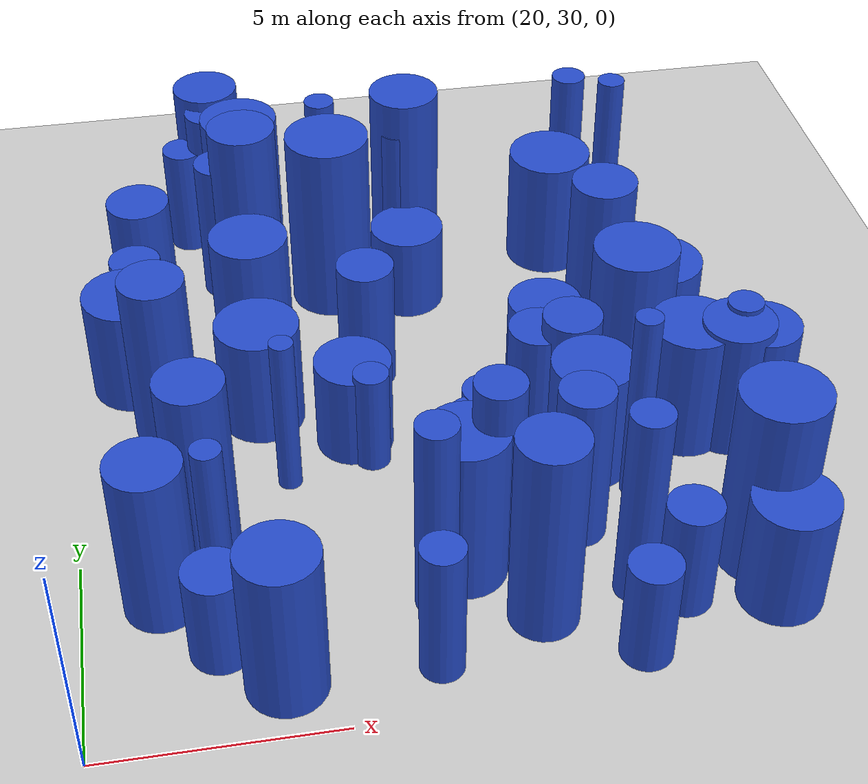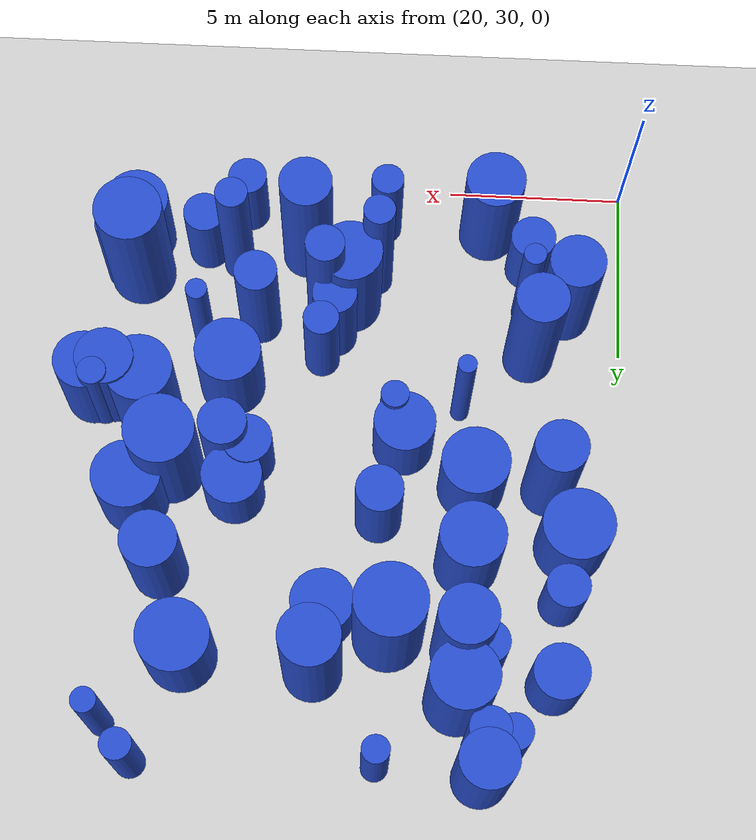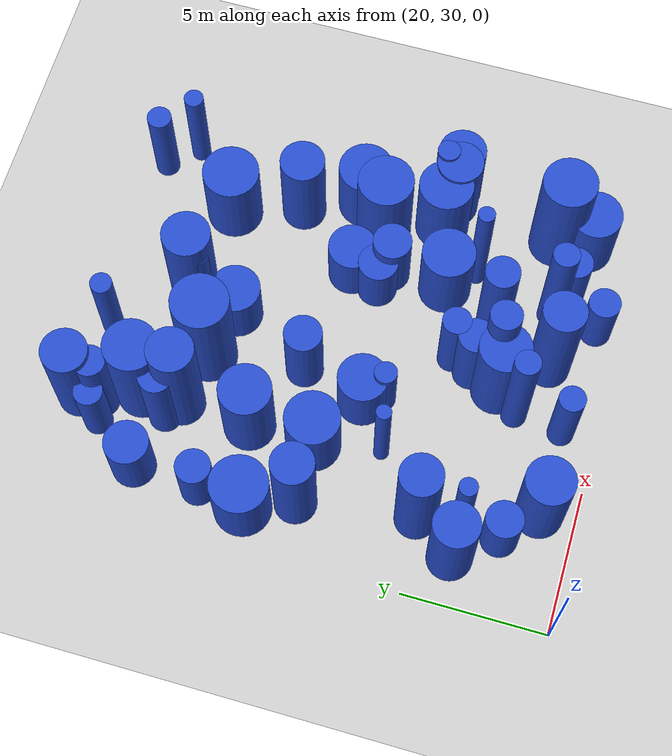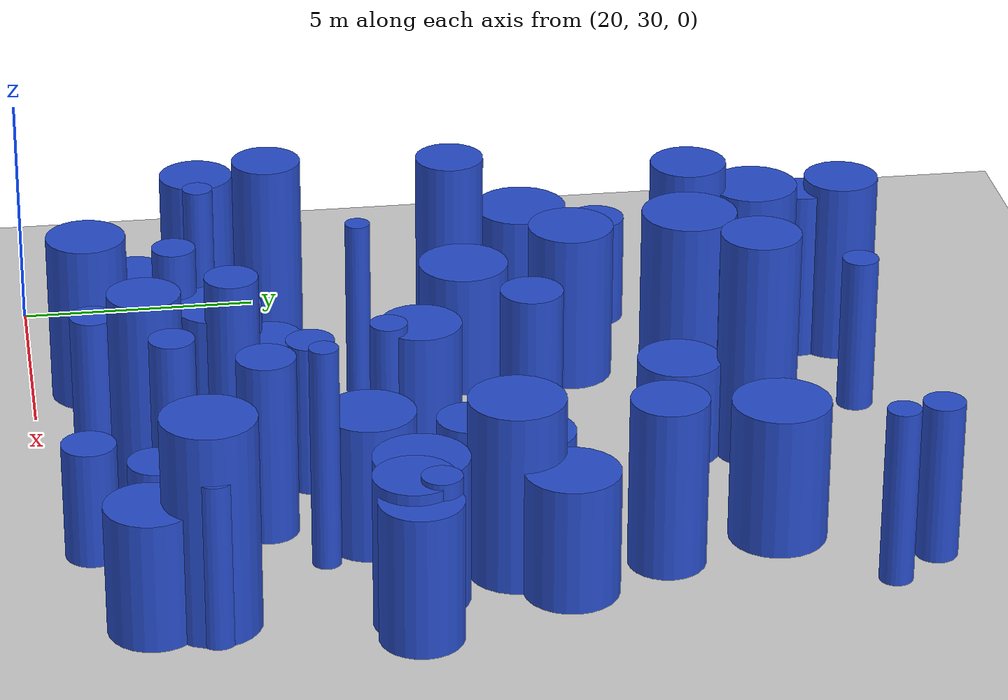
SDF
<sdf version="1.6">
 <world name="default">
  <model name="ground_plane">
   <static>1</static>
   <link name="link">
    <collision name="collision">
     <geometry><plane><normal>0 0 1</normal><size>100 100</size></plane></geometry>
     <surface><friction><ode><mu>100</mu><mu2>50</mu2></ode></friction></surface>
    </collision>
    <visual name="visual">
     <cast_shadows>0</cast_shadows>
     <geometry><plane><normal>0 0 1</normal><size>100 100</size></plane></geometry>
     <material>
      <script><uri>file://media/materials/scripts/gazebo.material</uri><name>Gazebo/Grey</name></script>
     </material>
    </visual>
   </link>
  </model>
  <model name="11">
   <static>0</static>
   <link name="link">
    <inertial>
     <mass>2</mass>
     <inertia><ixx>1.98008</ixx><ixy>0</ixy><ixz>0</ixz><iyy>1.98008</iyy><iyz>0</iyz><izz>0.982956</izz></inertia>
    </inertial>
    <collision name="collision">
     <geometry><cylinder><length>2.98858</length><radius>0.991441</radius></cylinder></geometry>
     <surface><contact><collide_without_contact>1</collide_without_contact></contact></surface>
    </collision>
    <visual name="visual">
     <geometry><cylinder><length>2.98858</length><radius>0.991441</radius></cylinder></geometry>
     <material>
      <script><uri>file://media/materials/scripts/gazebo.material</uri><name>Gazebo/Blue</name></script>
     </material>
    </visual>
    <gravity>0</gravity>
   </link>
   <pose>32.0029 44.3985 1.49429 0 -0 0</pose>
  </model>
  <model name="12">
   <static>0</static>
   <link name="link">
    <inertial>
     <mass>2</mass>
     <inertia><ixx>4.39104</ixx><ixy>0</ixy><ixz>0</ixz><iyy>4.39104</iyy><iyz>0</iyz><izz>0.677612</izz></inertia>
    </inertial>
    <collision name="collision">
     <geometry><cylinder><length>4.93086</length><radius>0.823172</radius></cylinder></geometry>
     <surface><contact><collide_without_contact>1</collide_without_contact></contact></surface>
    </collision>
    <visual name="visual">
     <geometry><cylinder><length>4.93086</length><radius>0.823172</radius></cylinder></geometry>
     <material>
      <script><uri>file://media/materials/scripts/gazebo.material</uri><name>Gazebo/Blue</name></script>
     </material>
    </visual>
    <gravity>0</gravity>
   </link>
   <pose>28.3847 44.6674 2.46543 0 -0 0</pose>
  </model>
  <model name="13">
   <static>0</static>
   <link name="link">
    <inertial>
     <mass>2</mass>
     <inertia><ixx>1.80797</ixx><ixy>0</ixy><ixz>0</ixz><iyy>1.80797</iyy><iyz>0</iyz><izz>0.69155</izz></inertia>
    </inertial>
    <collision name="collision">
     <geometry><cylinder><length>2.96195</length><radius>0.831595</radius></cylinder></geometry>
     <surface><contact><collide_without_contact>1</collide_without_contact></contact></surface>
    </collision>
    <visual name="visual">
     <geometry><cylinder><length>2.96195</length><radius>0.831595</radius></cylinder></geometry>
     <material>
      <script><uri>file://media/materials/scripts/gazebo.material</uri><name>Gazebo/Blue</name></script>
     </material>
    </visual>
    <gravity>0</gravity>
   </link>
   <pose>35.0335 36.8774 1.48097 0 -0 0</pose>
  </model>
  <model name="16">
   <static>0</static>
   <link name="link">
    <inertial>
     <mass>2</mass>
     <inertia><ixx>1.94796</ixx><ixy>0</ixy><ixz>0</ixz><iyy>1.94796</iyy><iyz>0</iyz><izz>0.38834</izz></inertia>
    </inertial>
    <collision name="collision">
     <geometry><cylinder><length>3.24388</length><radius>0.623169</radius></cylinder></geometry>
     <surface><contact><collide_without_contact>1</collide_without_contact></contact></surface>
    </collision>
    <visual name="visual">
     <geometry><cylinder><length>3.24388</length><radius>0.623169</radius></cylinder></geometry>
     <material>
      <script><uri>file://media/materials/scripts/gazebo.material</uri><name>Gazebo/Blue</name></script>
     </material>
    </visual>
    <gravity>0</gravity>
   </link>
   <pose>28.2373 34.7081 1.62194 0 -0 0</pose>
  </model>
  <model name="18">
   <static>0</static>
   <link name="link">
    <inertial>
     <mass>2</mass>
     <inertia><ixx>1.36588</ixx><ixy>0</ixy><ixz>0</ixz><iyy>1.36588</iyy><iyz>0</iyz><izz>0.264625</izz></inertia>
    </inertial>
    <collision name="collision">
     <geometry><cylinder><length>2.72056</length><radius>0.514417</radius></cylinder></geometry>
     <surface><contact><collide_without_contact>1</collide_without_contact></contact></surface>
    </collision>
    <visual name="visual">
     <geometry><cylinder><length>2.72056</length><radius>0.514417</radius></cylinder></geometry>
     <material>
      <script><uri>file://media/materials/scripts/gazebo.material</uri><name>Gazebo/Blue</name></script>
     </material>
    </visual>
    <gravity>0</gravity>
   </link>
   <pose>28.2068 44.8037 1.36028 0 -0 0</pose>
  </model>
  <model name="21">
   <static>0</static>
   <link name="link">
    <inertial>
     <mass>2</mass>
     <inertia><ixx>4.07181</ixx><ixy>0</ixy><ixz>0</ixz><iyy>4.07181</iyy><iyz>0</iyz><izz>0.543778</izz></inertia>
    </inertial>
    <collision name="collision">
     <geometry><cylinder><length>4.77488</length><radius>0.737413</radius></cylinder></geometry>
     <surface><contact><collide_without_contact>1</collide_without_contact></contact></surface>
    </collision>
    <visual name="visual">
     <geometry><cylinder><length>4.77488</length><radius>0.737413</radius></cylinder></geometry>
     <material>
      <script><uri>file://media/materials/scripts/gazebo.material</uri><name>Gazebo/Blue</name></script>
     </material>
    </visual>
    <gravity>0</gravity>
   </link>
   <pose>29.1484 32.1402 2.38744 0 -0 0</pose>
  </model>
  <model name="29">
   <static>0</static>
   <link name="link">
    <inertial>
     <mass>2</mass>
     <inertia><ixx>1.64089</ixx><ixy>0</ixy><ixz>0</ixz><iyy>1.64089</iyy><iyz>0</iyz><izz>0.902527</izz></inertia>
    </inertial>
    <collision name="collision">
     <geometry><cylinder><length>2.67166</length><radius>0.950014</radius></cylinder></geometry>
     <surface><contact><collide_without_contact>1</collide_without_contact></contact></surface>
    </collision>
    <visual name="visual">
     <geometry><cylinder><length>2.67166</length><radius>0.950014</radius></cylinder></geometry>
     <material>
      <script><uri>file://media/materials/scripts/gazebo.material</uri><name>Gazebo/Blue</name></script>
     </material>
    </visual>
    <gravity>0</gravity>
   </link>
   <pose>24.1929 39.1758 1.33583 0 -0 0</pose>
  </model>
  <model name="31">
   <static>0</static>
   <link name="link">
    <inertial>
     <mass>2</mass>
     <inertia><ixx>1.24573</ixx><ixy>0</ixy><ixz>0</ixz><iyy>1.24573</iyy><iyz>0</iyz><izz>0.741657</izz></inertia>
    </inertial>
    <collision name="collision">
     <geometry><cylinder><length>2.29115</length><radius>0.861195</radius></cylinder></geometry>
     <surface><contact><collide_without_contact>1</collide_without_contact></contact></surface>
    </collision>
    <visual name="visual">
     <geometry><cylinder><length>2.29115</length><radius>0.861195</radius></cylinder></geometry>
     <material>
      <script><uri>file://media/materials/scripts/gazebo.material</uri><name>Gazebo/Blue</name></script>
     </material>
    </visual>
    <gravity>0</gravity>
   </link>
   <pose>26.1555 38.0122 1.14558 0 -0 0</pose>
  </model>
  <model name="36">
   <static>0</static>
   <link name="link">
    <inertial>
     <mass>2</mass>
     <inertia><ixx>1.9741</ixx><ixy>0</ixy><ixz>0</ixz><iyy>1.9741</iyy><iyz>0</iyz><izz>0.180988</izz></inertia>
    </inertial>
    <collision name="collision">
     <geometry><cylinder><length>3.36179</length><radius>0.425426</radius></cylinder></geometry>
     <surface><contact><collide_without_contact>1</collide_without_contact></contact></surface>
    </collision>
    <visual name="visual">
     <geometry><cylinder><length>3.36179</length><radius>0.425426</radius></cylinder></geometry>
     <material>
      <script><uri>file://media/materials/scripts/gazebo.material</uri><name>Gazebo/Blue</name></script>
     </material>
    </visual>
    <gravity>0</gravity>
   </link>
   <pose>33.1796 47.3533 1.6809 0 -0 0</pose>
  </model>
  <model name="52">
   <static>0</static>
   <link name="link">
    <inertial>
     <mass>2</mass>
     <inertia><ixx>2.45511</ixx><ixy>0</ixy><ixz>0</ixz><iyy>2.45511</iyy><iyz>0</iyz><izz>0.610488</izz></inertia>
    </inertial>
    <collision name="collision">
     <geometry><cylinder><length>3.59154</length><radius>0.781337</radius></cylinder></geometry>
     <surface><contact><collide_without_contact>1</collide_without_contact></contact></surface>
    </collision>
    <visual name="visual">
     <geometry><cylinder><length>3.59154</length><radius>0.781337</radius></cylinder></geometry>
     <material>
      <script><uri>file://media/materials/scripts/gazebo.material</uri><name>Gazebo/Blue</name></script>
     </material>
    </visual>
    <gravity>0</gravity>
   </link>
   <pose>32.7626 42.022 1.79577 0 -0 0</pose>
  </model>
  <model name="53">
   <static>0</static>
   <link name="link">
    <inertial>
     <mass>2</mass>
     <inertia><ixx>1.89191</ixx><ixy>0</ixy><ixz>0</ixz><iyy>1.89191</iyy><iyz>0</iyz><izz>0.1601</izz></inertia>
    </inertial>
    <collision name="collision">
     <geometry><cylinder><length>3.29714</length><radius>0.400125</radius></cylinder></geometry>
     <surface><contact><collide_without_contact>1</collide_without_contact></contact></surface>
    </collision>
    <visual name="visual">
     <geometry><cylinder><length>3.29714</length><radius>0.400125</radius></cylinder></geometry>
     <material>
      <script><uri>file://media/materials/scripts/gazebo.material</uri><name>Gazebo/Blue</name></script>
     </material>
    </visual>
    <gravity>0</gravity>
   </link>
   <pose>34.7148 37.3115 1.64857 0 -0 0</pose>
  </model>
  <model name="58">
   <static>0</static>
   <link name="link">
    <inertial>
     <mass>2</mass>
     <inertia><ixx>2.80734</ixx><ixy>0</ixy><ixz>0</ixz><iyy>2.80734</iyy><iyz>0</iyz><izz>0.790535</izz></inertia>
    </inertial>
    <collision name="collision">
     <geometry><cylinder><length>3.80426</length><radius>0.889121</radius></cylinder></geometry>
     <surface><contact><collide_without_contact>1</collide_without_contact></contact></surface>
    </collision>
    <visual name="visual">
     <geometry><cylinder><length>3.80426</length><radius>0.889121</radius></cylinder></geometry>
     <material>
      <script><uri>file://media/materials/scripts/gazebo.material</uri><name>Gazebo/Blue</name></script>
     </material>
    </visual>
    <gravity>0</gravity>
   </link>
   <pose>27.8441 33.6819 1.90213 0 -0 0</pose>
  </model>
  <model name="59">
   <static>0</static>
   <link name="link">
    <inertial>
     <mass>2</mass>
     <inertia><ixx>1.12894</ixx><ixy>0</ixy><ixz>0</ixz><iyy>1.12894</iyy><iyz>0</iyz><izz>0.76588</izz></inertia>
    </inertial>
    <collision name="collision">
     <geometry><cylinder><length>2.11565</length><radius>0.875146</radius></cylinder></geometry>
     <surface><contact><collide_without_contact>1</collide_without_contact></contact></surface>
    </collision>
    <visual name="visual">
     <geometry><cylinder><length>2.11565</length><radius>0.875146</radius></cylinder></geometry>
     <material>
      <script><uri>file://media/materials/scripts/gazebo.material</uri><name>Gazebo/Blue</name></script>
     </material>
    </visual>
    <gravity>0</gravity>
   </link>
   <pose>28.177 43.0977 1.05782 0 -0 0</pose>
  </model>
  <model name="64">
   <static>0</static>
   <link name="link">
    <inertial>
     <mass>2</mass>
     <inertia><ixx>1.07162</ixx><ixy>0</ixy><ixz>0</ixz><iyy>1.07162</iyy><iyz>0</iyz><izz>0.712238</izz></inertia>
    </inertial>
    <collision name="collision">
     <geometry><cylinder><length>2.07196</length><radius>0.843942</radius></cylinder></geometry>
     <surface><contact><collide_without_contact>1</collide_without_contact></contact></surface>
    </collision>
    <visual name="visual">
     <geometry><cylinder><length>2.07196</length><radius>0.843942</radius></cylinder></geometry>
     <material>
      <script><uri>file://media/materials/scripts/gazebo.material</uri><name>Gazebo/Blue</name></script>
     </material>
    </visual>
    <gravity>0</gravity>
   </link>
   <pose>30.8302 39.6819 1.03598 0 -0 0</pose>
  </model>
  <model name="69">
   <static>0</static>
   <link name="link">
    <inertial>
     <mass>2</mass>
     <inertia><ixx>2.55552</ixx><ixy>0</ixy><ixz>0</ixz><iyy>2.55552</iyy><iyz>0</iyz><izz>0.698081</izz></inertia>
    </inertial>
    <collision name="collision">
     <geometry><cylinder><length>3.63853</length><radius>0.835512</radius></cylinder></geometry>
     <surface><contact><collide_without_contact>1</collide_without_contact></contact></surface>
    </collision>
    <visual name="visual">
     <geometry><cylinder><length>3.63853</length><radius>0.835512</radius></cylinder></geometry>
     <material>
      <script><uri>file://media/materials/scripts/gazebo.material</uri><name>Gazebo/Blue</name></script>
     </material>
    </visual>
    <gravity>0</gravity>
   </link>
   <pose>23.89 31.2537 1.81926 0 -0 0</pose>
  </model>
  <model name="78">
   <static>0</static>
   <link name="link">
    <inertial>
     <mass>2</mass>
     <inertia><ixx>3.89358</ixx><ixy>0</ixy><ixz>0</ixz><iyy>3.89358</iyy><iyz>0</iyz><izz>0.194985</izz></inertia>
    </inertial>
    <collision name="collision">
     <geometry><cylinder><length>4.77247</length><radius>0.441571</radius></cylinder></geometry>
     <surface><contact><collide_without_contact>1</collide_without_contact></contact></surface>
    </collision>
    <visual name="visual">
     <geometry><cylinder><length>4.77247</length><radius>0.441571</radius></cylinder></geometry>
     <material>
      <script><uri>file://media/materials/scripts/gazebo.material</uri><name>Gazebo/Blue</name></script>
     </material>
    </visual>
    <gravity>0</gravity>
   </link>
   <pose>27.1001 32.8841 2.38624 0 -0 0</pose>
  </model>
  <model name="91">
   <static>0</static>
   <link name="link">
    <inertial>
     <mass>2</mass>
     <inertia><ixx>1.88416</ixx><ixy>0</ixy><ixz>0</ixz><iyy>1.88416</iyy><iyz>0</iyz><izz>0.248682</izz></inertia>
    </inertial>
    <collision name="collision">
     <geometry><cylinder><length>3.24945</length><radius>0.498681</radius></cylinder></geometry>
     <surface><contact><collide_without_contact>1</collide_without_contact></contact></surface>
    </collision>
    <visual name="visual">
     <geometry><cylinder><length>3.24945</length><radius>0.498681</radius></cylinder></geometry>
     <material>
      <script><uri>file://media/materials/scripts/gazebo.material</uri><name>Gazebo/Blue</name></script>
     </material>
    </visual>
    <gravity>0</gravity>
   </link>
   <pose>28.5794 35.4647 1.62472 0 -0 0</pose>
  </model>
  <model name="94">
   <static>0</static>
   <link name="link">
    <inertial>
     <mass>2</mass>
     <inertia>
      <ixx>2.56569</ixx>
      <ixy>0</ixy>
      <ixz>0</ixz>
      <iyy>2.56569</iyy>
      <iyz>0</iyz>
      <izz>0.0685873</izz>
     </inertia>
    </inertial>
    <collision name="collision">
     <geometry><cylinder><length>3.89722</length><radius>0.261892</radius></cylinder></geometry>
     <surface><contact><collide_without_contact>1</collide_without_contact></contact></surface>
    </collision>
    <visual name="visual">
     <geometry><cylinder><length>3.89722</length><radius>0.261892</radius></cylinder></geometry>
     <material>
      <script><uri>file://media/materials/scripts/gazebo.material</uri><name>Gazebo/Blue</name></script>
     </material>
    </visual>
    <gravity>0</gravity>
   </link>
   <pose>24.5646 36.8898 1.94861 0 -0 0</pose>
  </model>
  <model name="103">
   <static>0</static>
   <link name="link">
    <inertial>
     <mass>2</mass>
     <inertia><ixx>3.8726</ixx><ixy>0</ixy><ixz>0</ixz><iyy>3.8726</iyy><iyz>0</iyz><izz>0.29541</izz></inertia>
    </inertial>
    <collision name="collision">
     <geometry><cylinder><length>4.72751</length><radius>0.543517</radius></cylinder></geometry>
     <surface><contact><collide_without_contact>1</collide_without_contact></contact></surface>
    </collision>
    <visual name="visual">
     <geometry><cylinder><length>4.72751</length><radius>0.543517</radius></cylinder></geometry>
     <material>
      <script><uri>file://media/materials/scripts/gazebo.material</uri><name>Gazebo/Blue</name></script>
     </material>
    </visual>
    <gravity>0</gravity>
   </link>
   <pose>28.5316 33.9189 2.36376 0 -0 0</pose>
  </model>
  <model name="109">
   <static>0</static>
   <link name="link">
    <inertial>
     <mass>2</mass>
     <inertia>
      <ixx>2.86598</ixx>
      <ixy>0</ixy>
      <ixz>0</ixz>
      <iyy>2.86598</iyy>
      <iyz>0</iyz>
      <izz>0.0994086</izz>
     </inertia>
    </inertial>
    <collision name="collision">
     <geometry><cylinder><length>4.11067</length><radius>0.315291</radius></cylinder></geometry>
     <surface><contact><collide_without_contact>1</collide_without_contact></contact></surface>
    </collision>
    <visual name="visual">
     <geometry><cylinder><length>4.11067</length><radius>0.315291</radius></cylinder></geometry>
     <material>
      <script><uri>file://media/materials/scripts/gazebo.material</uri><name>Gazebo/Blue</name></script>
     </material>
    </visual>
    <gravity>0</gravity>
   </link>
   <pose>22.8186 33.6914 2.05534 0 -0 0</pose>
  </model>
  <model name="138">
   <static>0</static>
   <link name="link">
    <inertial>
     <mass>2</mass>
     <inertia><ixx>2.86616</ixx><ixy>0</ixy><ixz>0</ixz><iyy>2.86616</iyy><iyz>0</iyz><izz>0.94196</izz></inertia>
    </inertial>
    <collision name="collision">
     <geometry><cylinder><length>3.79092</length><radius>0.970546</radius></cylinder></geometry>
     <surface><contact><collide_without_contact>1</collide_without_contact></contact></surface>
    </collision>
    <visual name="visual">
     <geometry><cylinder><length>3.79092</length><radius>0.970546</radius></cylinder></geometry>
     <material>
      <script><uri>file://media/materials/scripts/gazebo.material</uri><name>Gazebo/Blue</name></script>
     </material>
    </visual>
    <gravity>0</gravity>
   </link>
   <pose>32.707 39.0409 1.89546 0 -0 0</pose>
  </model>
  <model name="154">
   <static>0</static>
   <link name="link">
    <inertial>
     <mass>2</mass>
     <inertia><ixx>1.969</ixx><ixy>0</ixy><ixz>0</ixz><iyy>1.969</iyy><iyz>0</iyz><izz>0.143635</izz></inertia>
    </inertial>
    <collision name="collision">
     <geometry><cylinder><length>3.37388</length><radius>0.378992</radius></cylinder></geometry>
     <surface><contact><collide_without_contact>1</collide_without_contact></contact></surface>
    </collision>
    <visual name="visual">
     <geometry><cylinder><length>3.37388</length><radius>0.378992</radius></cylinder></geometry>
     <material>
      <script><uri>file://media/materials/scripts/gazebo.material</uri><name>Gazebo/Blue</name></script>
     </material>
    </visual>
    <gravity>0</gravity>
   </link>
   <pose>26.5902 47.1904 1.68694 0 -0 0</pose>
  </model>
  <model name="162">
   <static>0</static>
   <link name="link">
    <inertial>
     <mass>2</mass>
     <inertia><ixx>1.81525</ixx><ixy>0</ixy><ixz>0</ixz><iyy>1.81525</iyy><iyz>0</iyz><izz>0.856891</izz></inertia>
    </inertial>
    <collision name="collision">
     <geometry><cylinder><length>2.88458</length><radius>0.925684</radius></cylinder></geometry>
     <surface><contact><collide_without_contact>1</collide_without_contact></contact></surface>
    </collision>
    <visual name="visual">
     <geometry><cylinder><length>2.88458</length><radius>0.925684</radius></cylinder></geometry>
     <material>
      <script><uri>file://media/materials/scripts/gazebo.material</uri><name>Gazebo/Blue</name></script>
     </material>
    </visual>
    <gravity>0</gravity>
   </link>
   <pose>31.1056 36.3687 1.44229 0 -0 0</pose>
  </model>
  <model name="187">
   <static>0</static>
   <link name="link">
    <inertial>
     <mass>2</mass>
     <inertia><ixx>2.02524</ixx><ixy>0</ixy><ixz>0</ixz><iyy>2.02524</iyy><iyz>0</iyz><izz>0.662863</izz></inertia>
    </inertial>
    <collision name="collision">
     <geometry><cylinder><length>3.18793</length><radius>0.814164</radius></cylinder></geometry>
     <surface><contact><collide_without_contact>1</collide_without_contact></contact></surface>
    </collision>
    <visual name="visual">
     <geometry><cylinder><length>3.18793</length><radius>0.814164</radius></cylinder></geometry>
     <material>
      <script><uri>file://media/materials/scripts/gazebo.material</uri><name>Gazebo/Blue</name></script>
     </material>
    </visual>
    <gravity>0</gravity>
   </link>
   <pose>34.4383 36.8271 1.59396 0 -0 0</pose>
  </model>
  <model name="192">
   <static>0</static>
   <link name="link">
    <inertial>
     <mass>2</mass>
     <inertia><ixx>2.07774</ixx><ixy>0</ixy><ixz>0</ixz><iyy>2.07774</iyy><iyz>0</iyz><izz>0.131573</izz></inertia>
    </inertial>
    <collision name="collision">
     <geometry><cylinder><length>3.47444</length><radius>0.36273</radius></cylinder></geometry>
     <surface><contact><collide_without_contact>1</collide_without_contact></contact></surface>
    </collision>
    <visual name="visual">
     <geometry><cylinder><length>3.47444</length><radius>0.36273</radius></cylinder></geometry>
     <material>
      <script><uri>file://media/materials/scripts/gazebo.material</uri><name>Gazebo/Blue</name></script>
     </material>
    </visual>
    <gravity>0</gravity>
   </link>
   <pose>34.6264 33.0363 1.73722 0 -0 0</pose>
  </model>
  <model name="204">
   <static>0</static>
   <link name="link">
    <inertial>
     <mass>2</mass>
     <inertia><ixx>2.81573</ixx><ixy>0</ixy><ixz>0</ixz><iyy>2.81573</iyy><iyz>0</iyz><izz>0.606996</izz></inertia>
    </inertial>
    <collision name="collision">
     <geometry><cylinder><length>3.88244</length><radius>0.7791</radius></cylinder></geometry>
     <surface><contact><collide_without_contact>1</collide_without_contact></contact></surface>
    </collision>
    <visual name="visual">
     <geometry><cylinder><length>3.88244</length><radius>0.7791</radius></cylinder></geometry>
     <material>
      <script><uri>file://media/materials/scripts/gazebo.material</uri><name>Gazebo/Blue</name></script>
     </material>
    </visual>
    <gravity>0</gravity>
   </link>
   <pose>21.6187 33.7462 1.94122 0 -0 0</pose>
  </model>
  <model name="206">
   <static>0</static>
   <link name="link">
    <inertial>
     <mass>2</mass>
     <inertia><ixx>2.36079</ixx><ixy>0</ixy><ixz>0</ixz><iyy>2.36079</iyy><iyz>0</iyz><izz>0.11536</izz></inertia>
    </inertial>
    <collision name="collision">
     <geometry><cylinder><length>3.71735</length><radius>0.339647</radius></cylinder></geometry>
     <surface><contact><collide_without_contact>1</collide_without_contact></contact></surface>
    </collision>
    <visual name="visual">
     <geometry><cylinder><length>3.71735</length><radius>0.339647</radius></cylinder></geometry>
     <material>
      <script><uri>file://media/materials/scripts/gazebo.material</uri><name>Gazebo/Blue</name></script>
     </material>
    </visual>
    <gravity>0</gravity>
   </link>
   <pose>34.0409 46.3387 1.85867 0 -0 0</pose>
  </model>
  <model name="213">
   <static>0</static>
   <link name="link">
    <inertial>
     <mass>2</mass>
     <inertia><ixx>1.00609</ixx><ixy>0</ixy><ixz>0</ixz><iyy>1.00609</iyy><iyz>0</iyz><izz>0.486939</izz></inertia>
    </inertial>
    <collision name="collision">
     <geometry><cylinder><length>2.13909</length><radius>0.69781</radius></cylinder></geometry>
     <surface><contact><collide_without_contact>1</collide_without_contact></contact></surface>
    </collision>
    <visual name="visual">
     <geometry><cylinder><length>2.13909</length><radius>0.69781</radius></cylinder></geometry>
     <material>
      <script><uri>file://media/materials/scripts/gazebo.material</uri><name>Gazebo/Blue</name></script>
     </material>
    </visual>
    <gravity>0</gravity>
   </link>
   <pose>30.4654 38.6609 1.06955 0 -0 0</pose>
  </model>
  <model name="222">
   <static>0</static>
   <link name="link">
    <inertial>
     <mass>2</mass>
     <inertia><ixx>3.75545</ixx><ixy>0</ixy><ixz>0</ixz><iyy>3.75545</iyy><iyz>0</iyz><izz>0.888662</izz></inertia>
    </inertial>
    <collision name="collision">
     <geometry><cylinder><length>4.45721</length><radius>0.942689</radius></cylinder></geometry>
     <surface><contact><collide_without_contact>1</collide_without_contact></contact></surface>
    </collision>
    <visual name="visual">
     <geometry><cylinder><length>4.45721</length><radius>0.942689</radius></cylinder></geometry>
     <material>
      <script><uri>file://media/materials/scripts/gazebo.material</uri><name>Gazebo/Blue</name></script>
     </material>
    </visual>
    <gravity>0</gravity>
   </link>
   <pose>33.9636 33.0053 2.2286 0 -0 0</pose>
  </model>
  <model name="224">
   <static>0</static>
   <link name="link">
    <inertial>
     <mass>2</mass>
     <inertia><ixx>1.28076</ixx><ixy>0</ixy><ixz>0</ixz><iyy>1.28076</iyy><iyz>0</iyz><izz>0.578154</izz></inertia>
    </inertial>
    <collision name="collision">
     <geometry><cylinder><length>2.43929</length><radius>0.760364</radius></cylinder></geometry>
     <surface><contact><collide_without_contact>1</collide_without_contact></contact></surface>
    </collision>
    <visual name="visual">
     <geometry><cylinder><length>2.43929</length><radius>0.760364</radius></cylinder></geometry>
     <material>
      <script><uri>file://media/materials/scripts/gazebo.material</uri><name>Gazebo/Blue</name></script>
     </material>
    </visual>
    <gravity>0</gravity>
   </link>
   <pose>21.7975 44.7899 1.21964 0 -0 0</pose>
  </model>
  <model name="229">
   <static>0</static>
   <link name="link">
    <inertial>
     <mass>2</mass>
     <inertia><ixx>2.92622</ixx><ixy>0</ixy><ixz>0</ixz><iyy>2.92622</iyy><iyz>0</iyz><izz>0.6225</izz></inertia>
    </inertial>
    <collision name="collision">
     <geometry><cylinder><length>3.96104</length><radius>0.788987</radius></cylinder></geometry>
     <surface><contact><collide_without_contact>1</collide_without_contact></contact></surface>
    </collision>
    <visual name="visual">
     <geometry><cylinder><length>3.96104</length><radius>0.788987</radius></cylinder></geometry>
     <material>
      <script><uri>file://media/materials/scripts/gazebo.material</uri><name>Gazebo/Blue</name></script>
     </material>
    </visual>
    <gravity>0</gravity>
   </link>
   <pose>23.7464 47.3746 1.98052 0 -0 0</pose>
  </model>
  <model name="232">
   <static>0</static>
   <link name="link">
    <inertial>
     <mass>2</mass>
     <inertia><ixx>2.0346</ixx><ixy>0</ixy><ixz>0</ixz><iyy>2.0346</iyy><iyz>0</iyz><izz>0.910581</izz></inertia>
    </inertial>
    <collision name="collision">
     <geometry><cylinder><length>3.07829</length><radius>0.954244</radius></cylinder></geometry>
     <surface><contact><collide_without_contact>1</collide_without_contact></contact></surface>
    </collision>
    <visual name="visual">
     <geometry><cylinder><length>3.07829</length><radius>0.954244</radius></cylinder></geometry>
     <material>
      <script><uri>file://media/materials/scripts/gazebo.material</uri><name>Gazebo/Blue</name></script>
     </material>
    </visual>
    <gravity>0</gravity>
   </link>
   <pose>33.4994 37.0755 1.53915 0 -0 0</pose>
  </model>
  <model name="264">
   <static>0</static>
   <link name="link">
    <inertial>
     <mass>2</mass>
     <inertia><ixx>1.6187</ixx><ixy>0</ixy><ixz>0</ixz><iyy>1.6187</iyy><iyz>0</iyz><izz>0.809541</izz></inertia>
    </inertial>
    <collision name="collision">
     <geometry><cylinder><length>2.69881</length><radius>0.899745</radius></cylinder></geometry>
     <surface><contact><collide_without_contact>1</collide_without_contact></contact></surface>
    </collision>
    <visual name="visual">
     <geometry><cylinder><length>2.69881</length><radius>0.899745</radius></cylinder></geometry>
     <material>
      <script><uri>file://media/materials/scripts/gazebo.material</uri><name>Gazebo/Blue</name></script>
     </material>
    </visual>
    <gravity>0</gravity>
   </link>
   <pose>34.006 31.8527 1.3494 0 -0 0</pose>
  </model>
  <model name="265">
   <static>0</static>
   <link name="link">
    <inertial>
     <mass>2</mass>
     <inertia><ixx>3.38498</ixx><ixy>0</ixy><ixz>0</ixz><iyy>3.38498</iyy><iyz>0</iyz><izz>0.852999</izz></inertia>
    </inertial>
    <collision name="collision">
     <geometry><cylinder><length>4.21318</length><radius>0.92358</radius></cylinder></geometry>
     <surface><contact><collide_without_contact>1</collide_without_contact></contact></surface>
    </collision>
    <visual name="visual">
     <geometry><cylinder><length>4.21318</length><radius>0.92358</radius></cylinder></geometry>
     <material>
      <script><uri>file://media/materials/scripts/gazebo.material</uri><name>Gazebo/Blue</name></script>
     </material>
    </visual>
    <gravity>0</gravity>
   </link>
   <pose>24.4255 45.3263 2.10659 0 -0 0</pose>
  </model>
  <model name="267">
   <static>0</static>
   <link name="link">
    <inertial>
     <mass>2</mass>
     <inertia><ixx>1.28697</ixx><ixy>0</ixy><ixz>0</ixz><iyy>1.28697</iyy><iyz>0</iyz><izz>0.342828</izz></inertia>
    </inertial>
    <collision name="collision">
     <geometry><cylinder><length>2.58715</length><radius>0.585515</radius></cylinder></geometry>
     <surface><contact><collide_without_contact>1</collide_without_contact></contact></surface>
    </collision>
    <visual name="visual">
     <geometry><cylinder><length>2.58715</length><radius>0.585515</radius></cylinder></geometry>
     <material>
      <script><uri>file://media/materials/scripts/gazebo.material</uri><name>Gazebo/Blue</name></script>
     </material>
    </visual>
    <gravity>0</gravity>
   </link>
   <pose>32.0766 32.1246 1.29357 0 -0 0</pose>
  </model>
  <model name="270">
   <static>0</static>
   <link name="link">
    <inertial>
     <mass>2</mass>
     <inertia><ixx>1.15854</ixx><ixy>0</ixy><ixz>0</ixz><iyy>1.15854</iyy><iyz>0</iyz><izz>0.301348</izz></inertia>
    </inertial>
    <collision name="collision">
     <geometry><cylinder><length>2.4591</length><radius>0.548952</radius></cylinder></geometry>
     <surface><contact><collide_without_contact>1</collide_without_contact></contact></surface>
    </collision>
    <visual name="visual">
     <geometry><cylinder><length>2.4591</length><radius>0.548952</radius></cylinder></geometry>
     <material>
      <script><uri>file://media/materials/scripts/gazebo.material</uri><name>Gazebo/Blue</name></script>
     </material>
    </visual>
    <gravity>0</gravity>
   </link>
   <pose>30.9279 30.8693 1.22955 0 -0 0</pose>
  </model>
  <model name="288">
   <static>0</static>
   <link name="link">
    <inertial>
     <mass>2</mass>
     <inertia><ixx>3.95964</ixx><ixy>0</ixy><ixz>0</ixz><iyy>3.95964</iyy><iyz>0</iyz><izz>0.973963</izz></inertia>
    </inertial>
    <collision name="collision">
     <geometry><cylinder><length>4.56464</length><radius>0.986896</radius></cylinder></geometry>
     <surface><contact><collide_without_contact>1</collide_without_contact></contact></surface>
    </collision>
    <visual name="visual">
     <geometry><cylinder><length>4.56464</length><radius>0.986896</radius></cylinder></geometry>
     <material>
      <script><uri>file://media/materials/scripts/gazebo.material</uri><name>Gazebo/Blue</name></script>
     </material>
    </visual>
    <gravity>0</gravity>
   </link>
   <pose>26.3721 43.5804 2.28232 0 -0 0</pose>
  </model>
  <model name="291">
   <static>0</static>
   <link name="link">
    <inertial>
     <mass>2</mass>
     <inertia><ixx>1.36407</ixx><ixy>0</ixy><ixz>0</ixz><iyy>1.36407</iyy><iyz>0</iyz><izz>0.458772</izz></inertia>
    </inertial>
    <collision name="collision">
     <geometry><cylinder><length>2.60923</length><radius>0.677327</radius></cylinder></geometry>
     <surface><contact><collide_without_contact>1</collide_without_contact></contact></surface>
    </collision>
    <visual name="visual">
     <geometry><cylinder><length>2.60923</length><radius>0.677327</radius></cylinder></geometry>
     <material>
      <script><uri>file://media/materials/scripts/gazebo.material</uri><name>Gazebo/Blue</name></script>
     </material>
    </visual>
    <gravity>0</gravity>
   </link>
   <pose>31.1421 38.3559 1.30462 0 -0 0</pose>
  </model>
  <model name="307">
   <static>0</static>
   <link name="link">
    <inertial>
     <mass>2</mass>
     <inertia><ixx>1.09874</ixx><ixy>0</ixy><ixz>0</ixz><iyy>1.09874</iyy><iyz>0</iyz><izz>0.155872</izz></inertia>
    </inertial>
    <collision name="collision">
     <geometry><cylinder><length>2.47484</length><radius>0.394807</radius></cylinder></geometry>
     <surface><contact><collide_without_contact>1</collide_without_contact></contact></surface>
    </collision>
    <visual name="visual">
     <geometry><cylinder><length>2.47484</length><radius>0.394807</radius></cylinder></geometry>
     <material>
      <script><uri>file://media/materials/scripts/gazebo.material</uri><name>Gazebo/Blue</name></script>
     </material>
    </visual>
    <gravity>0</gravity>
   </link>
   <pose>26.4559 37.3053 1.23742 0 -0 0</pose>
  </model>
  <model name="336">
   <static>0</static>
   <link name="link">
    <inertial>
     <mass>2</mass>
     <inertia><ixx>2.44665</ixx><ixy>0</ixy><ixz>0</ixz><iyy>2.44665</iyy><iyz>0</iyz><izz>0.308872</izz></inertia>
    </inertial>
    <collision name="collision">
     <geometry><cylinder><length>3.70854</length><radius>0.555763</radius></cylinder></geometry>
     <surface><contact><collide_without_contact>1</collide_without_contact></contact></surface>
    </collision>
    <visual name="visual">
     <geometry><cylinder><length>3.70854</length><radius>0.555763</radius></cylinder></geometry>
     <material>
      <script><uri>file://media/materials/scripts/gazebo.material</uri><name>Gazebo/Blue</name></script>
     </material>
    </visual>
    <gravity>0</gravity>
   </link>
   <pose>23.7224 46.5555 1.85427 0 -0 0</pose>
  </model>
  <model name="353">
   <static>0</static>
   <link name="link">
    <inertial>
     <mass>2</mass>
     <inertia><ixx>2.87809</ixx><ixy>0</ixy><ixz>0</ixz><iyy>2.87809</iyy><iyz>0</iyz><izz>0.246808</izz></inertia>
    </inertial>
    <collision name="collision">
     <geometry><cylinder><length>4.06548</length><radius>0.496798</radius></cylinder></geometry>
     <surface><contact><collide_without_contact>1</collide_without_contact></contact></surface>
    </collision>
    <visual name="visual">
     <geometry><cylinder><length>4.06548</length><radius>0.496798</radius></cylinder></geometry>
     <material>
      <script><uri>file://media/materials/scripts/gazebo.material</uri><name>Gazebo/Blue</name></script>
     </material>
    </visual>
    <gravity>0</gravity>
   </link>
   <pose>28.1957 44.3701 2.03274 0 -0 0</pose>
  </model>
  <model name="396">
   <static>0</static>
   <link name="link">
    <inertial>
     <mass>2</mass>
     <inertia><ixx>2.35602</ixx><ixy>0</ixy><ixz>0</ixz><iyy>2.35602</iyy><iyz>0</iyz><izz>0.327516</izz></inertia>
    </inertial>
    <collision name="collision">
     <geometry><cylinder><length>3.62679</length><radius>0.57229</radius></cylinder></geometry>
     <surface><contact><collide_without_contact>1</collide_without_contact></contact></surface>
    </collision>
    <visual name="visual">
     <geometry><cylinder><length>3.62679</length><radius>0.57229</radius></cylinder></geometry>
     <material>
      <script><uri>file://media/materials/scripts/gazebo.material</uri><name>Gazebo/Blue</name></script>
     </material>
    </visual>
    <gravity>0</gravity>
   </link>
   <pose>23.8097 44.3337 1.81339 0 -0 0</pose>
  </model>
  <model name="407">
   <static>0</static>
   <link name="link">
    <inertial>
     <mass>2</mass>
     <inertia><ixx>1.39668</ixx><ixy>0</ixy><ixz>0</ixz><iyy>1.39668</iyy><iyz>0</iyz><izz>0.245168</izz></inertia>
    </inertial>
    <collision name="collision">
     <geometry><cylinder><length>2.76489</length><radius>0.495144</radius></cylinder></geometry>
     <surface><contact><collide_without_contact>1</collide_without_contact></contact></surface>
    </collision>
    <visual name="visual">
     <geometry><cylinder><length>2.76489</length><radius>0.495144</radius></cylinder></geometry>
     <material>
      <script><uri>file://media/materials/scripts/gazebo.material</uri><name>Gazebo/Blue</name></script>
     </material>
    </visual>
    <gravity>0</gravity>
   </link>
   <pose>23.0215 46.4791 1.38244 0 -0 0</pose>
  </model>
  <model name="417">
   <static>0</static>
   <link name="link">
    <inertial>
     <mass>2</mass>
     <inertia>
      <ixx>3.75007</ixx>
      <ixy>0</ixy>
      <ixz>0</ixz>
      <iyy>3.75007</iyy>
      <iyz>0</iyz>
      <izz>0.0861773</izz>
     </inertia>
    </inertial>
    <collision name="collision">
     <geometry><cylinder><length>4.71613</length><radius>0.29356</radius></cylinder></geometry>
     <surface><contact><collide_without_contact>1</collide_without_contact></contact></surface>
    </collision>
    <visual name="visual">
     <geometry><cylinder><length>4.71613</length><radius>0.29356</radius></cylinder></geometry>
     <material>
      <script><uri>file://media/materials/scripts/gazebo.material</uri><name>Gazebo/Blue</name></script>
     </material>
    </visual>
    <gravity>0</gravity>
   </link>
   <pose>31.8912 35.4024 2.35807 0 -0 0</pose>
  </model>
  <model name="425">
   <static>0</static>
   <link name="link">
    <inertial>
     <mass>2</mass>
     <inertia><ixx>3.15536</ixx><ixy>0</ixy><ixz>0</ixz><iyy>3.15536</iyy><iyz>0</iyz><izz>0.534839</izz></inertia>
    </inertial>
    <collision name="collision">
     <geometry><cylinder><length>4.16265</length><radius>0.731327</radius></cylinder></geometry>
     <surface><contact><collide_without_contact>1</collide_without_contact></contact></surface>
    </collision>
    <visual name="visual">
     <geometry><cylinder><length>4.16265</length><radius>0.731327</radius></cylinder></geometry>
     <material>
      <script><uri>file://media/materials/scripts/gazebo.material</uri><name>Gazebo/Blue</name></script>
     </material>
    </visual>
    <gravity>0</gravity>
   </link>
   <pose>22.0405 39.1688 2.08133 0 -0 0</pose>
  </model>
  <model name="454">
   <static>0</static>
   <link name="link">
    <inertial>
     <mass>2</mass>
     <inertia><ixx>3.84396</ixx><ixy>0</ixy><ixz>0</ixz><iyy>3.84396</iyy><iyz>0</iyz><izz>0.204511</izz></inertia>
    </inertial>
    <collision name="collision">
     <geometry><cylinder><length>4.73817</length><radius>0.452229</radius></cylinder></geometry>
     <surface><contact><collide_without_contact>1</collide_without_contact></contact></surface>
    </collision>
    <visual name="visual">
     <geometry><cylinder><length>4.73817</length><radius>0.452229</radius></cylinder></geometry>
     <material>
      <script><uri>file://media/materials/scripts/gazebo.material</uri><name>Gazebo/Blue</name></script>
     </material>
    </visual>
    <gravity>0</gravity>
   </link>
   <pose>31.1494 32.5424 2.36908 0 -0 0</pose>
  </model>
  <model name="456">
   <static>0</static>
   <link name="link">
    <inertial>
     <mass>2</mass>
     <inertia><ixx>2.65181</ixx><ixy>0</ixy><ixz>0</ixz><iyy>2.65181</iyy><iyz>0</iyz><izz>0.356726</izz></inertia>
    </inertial>
    <collision name="collision">
     <geometry><cylinder><length>3.85236</length><radius>0.597265</radius></cylinder></geometry>
     <surface><contact><collide_without_contact>1</collide_without_contact></contact></surface>
    </collision>
    <visual name="visual">
     <geometry><cylinder><length>3.85236</length><radius>0.597265</radius></cylinder></geometry>
     <material>
      <script><uri>file://media/materials/scripts/gazebo.material</uri><name>Gazebo/Blue</name></script>
     </material>
    </visual>
    <gravity>0</gravity>
   </link>
   <pose>30.4172 34.414 1.92618 0 -0 0</pose>
  </model>
  <model name="459">
   <static>0</static>
   <link name="link">
    <inertial>
     <mass>2</mass>
     <inertia><ixx>2.36295</ixx><ixy>0</ixy><ixz>0</ixz><iyy>2.36295</iyy><iyz>0</iyz><izz>0.814948</izz></inertia>
    </inertial>
    <collision name="collision">
     <geometry><cylinder><length>3.42532</length><radius>0.902745</radius></cylinder></geometry>
     <surface><contact><collide_without_contact>1</collide_without_contact></contact></surface>
    </collision>
    <visual name="visual">
     <geometry><cylinder><length>3.42532</length><radius>0.902745</radius></cylinder></geometry>
     <material>
      <script><uri>file://media/materials/scripts/gazebo.material</uri><name>Gazebo/Blue</name></script>
     </material>
    </visual>
    <gravity>0</gravity>
   </link>
   <pose>24.2643 41.4564 1.71266 0 -0 0</pose>
  </model>
  <model name="462">
   <static>0</static>
   <link name="link">
    <inertial>
     <mass>2</mass>
     <inertia><ixx>3.76634</ixx><ixy>0</ixy><ixz>0</ixz><iyy>3.76634</iyy><iyz>0</iyz><izz>0.52827</izz></inertia>
    </inertial>
    <collision name="collision">
     <geometry><cylinder><length>4.58402</length><radius>0.726822</radius></cylinder></geometry>
     <surface><contact><collide_without_contact>1</collide_without_contact></contact></surface>
    </collision>
    <visual name="visual">
     <geometry><cylinder><length>4.58402</length><radius>0.726822</radius></cylinder></geometry>
     <material>
      <script><uri>file://media/materials/scripts/gazebo.material</uri><name>Gazebo/Blue</name></script>
     </material>
    </visual>
    <gravity>0</gravity>
   </link>
   <pose>22.6319 35.1704 2.29201 0 -0 0</pose>
  </model>
  <model name="464">
   <static>0</static>
   <link name="link">
    <inertial>
     <mass>2</mass>
     <inertia><ixx>1.06169</ixx><ixy>0</ixy><ixz>0</ixz><iyy>1.06169</iyy><iyz>0</iyz><izz>0.407312</izz></inertia>
    </inertial>
    <collision name="collision">
     <geometry><cylinder><length>2.26896</length><radius>0.63821</radius></cylinder></geometry>
     <surface><contact><collide_without_contact>1</collide_without_contact></contact></surface>
    </collision>
    <visual name="visual">
     <geometry><cylinder><length>2.26896</length><radius>0.63821</radius></cylinder></geometry>
     <material>
      <script><uri>file://media/materials/scripts/gazebo.material</uri><name>Gazebo/Blue</name></script>
     </material>
    </visual>
    <gravity>0</gravity>
   </link>
   <pose>22.7052 32.3267 1.13448 0 -0 0</pose>
  </model>
  <model name="465">
   <static>0</static>
   <link name="link">
    <inertial>
     <mass>2</mass>
     <inertia><ixx>1.887</ixx><ixy>0</ixy><ixz>0</ixz><iyy>1.887</iyy><iyz>0</iyz><izz>0.209892</izz></inertia>
    </inertial>
    <collision name="collision">
     <geometry><cylinder><length>3.26991</length><radius>0.458139</radius></cylinder></geometry>
     <surface><contact><collide_without_contact>1</collide_without_contact></contact></surface>
    </collision>
    <visual name="visual">
     <geometry><cylinder><length>3.26991</length><radius>0.458139</radius></cylinder></geometry>
     <material>
      <script><uri>file://media/materials/scripts/gazebo.material</uri><name>Gazebo/Blue</name></script>
     </material>
    </visual>
    <gravity>0</gravity>
   </link>
   <pose>26.9109 31.1965 1.63496 0 -0 0</pose>
  </model>
  <model name="466">
   <static>0</static>
   <link name="link">
    <inertial>
     <mass>2</mass>
     <inertia><ixx>1.61631</ixx><ixy>0</ixy><ixz>0</ixz><iyy>1.61631</iyy><iyz>0</iyz><izz>0.913005</izz></inertia>
    </inertial>
    <collision name="collision">
     <geometry><cylinder><length>2.63796</length><radius>0.955513</radius></cylinder></geometry>
     <surface><contact><collide_without_contact>1</collide_without_contact></contact></surface>
    </collision>
    <visual name="visual">
     <geometry><cylinder><length>2.63796</length><radius>0.955513</radius></cylinder></geometry>
     <material>
      <script><uri>file://media/materials/scripts/gazebo.material</uri><name>Gazebo/Blue</name></script>
     </material>
    </visual>
    <gravity>0</gravity>
   </link>
   <pose>33.6371 39.9833 1.31898 0 -0 0</pose>
  </model>
  <model name="473">
   <static>0</static>
   <link name="link">
    <inertial>
     <mass>2</mass>
     <inertia><ixx>1.64454</ixx><ixy>0</ixy><ixz>0</ixz><iyy>1.64454</iyy><iyz>0</iyz><izz>0.989186</izz></inertia>
    </inertial>
    <collision name="collision">
     <geometry><cylinder><length>2.62672</length><radius>0.994578</radius></cylinder></geometry>
     <surface><contact><collide_without_contact>1</collide_without_contact></contact></surface>
    </collision>
    <visual name="visual">
     <geometry><cylinder><length>2.62672</length><radius>0.994578</radius></cylinder></geometry>
     <material>
      <script><uri>file://media/materials/scripts/gazebo.material</uri><name>Gazebo/Blue</name></script>
     </material>
    </visual>
    <gravity>0</gravity>
   </link>
   <pose>21.3918 40.8166 1.31336 0 -0 0</pose>
  </model>
  <model name="484">
   <static>0</static>
   <link name="link">
    <inertial>
     <mass>2</mass>
     <inertia><ixx>4.15071</ixx><ixy>0</ixy><ixz>0</ixz><iyy>4.15071</iyy><iyz>0</iyz><izz>0.636137</izz></inertia>
    </inertial>
    <collision name="collision">
     <geometry><cylinder><length>4.7954</length><radius>0.797582</radius></cylinder></geometry>
     <surface><contact><collide_without_contact>1</collide_without_contact></contact></surface>
    </collision>
    <visual name="visual">
     <geometry><cylinder><length>4.7954</length><radius>0.797582</radius></cylinder></geometry>
     <material>
      <script><uri>file://media/materials/scripts/gazebo.material</uri><name>Gazebo/Blue</name></script>
     </material>
    </visual>
    <gravity>0</gravity>
   </link>
   <pose>24.4026 43.9156 2.3977 0 -0 0</pose>
  </model>
  <model name="492">
   <static>0</static>
   <link name="link">
    <inertial>
     <mass>2</mass>
     <inertia><ixx>1.89965</ixx><ixy>0</ixy><ixz>0</ixz><iyy>1.89965</iyy><iyz>0</iyz><izz>0.429834</izz></inertia>
    </inertial>
    <collision name="collision">
     <geometry><cylinder><length>3.17937</length><radius>0.655617</radius></cylinder></geometry>
     <surface><contact><collide_without_contact>1</collide_without_contact></contact></surface>
    </collision>
    <visual name="visual">
     <geometry><cylinder><length>3.17937</length><radius>0.655617</radius></cylinder></geometry>
     <material>
      <script><uri>file://media/materials/scripts/gazebo.material</uri><name>Gazebo/Blue</name></script>
     </material>
    </visual>
    <gravity>0</gravity>
   </link>
   <pose>26.7696 40.2419 1.58969 0 -0 0</pose>
  </model>
  <model name="494">
   <static>0</static>
   <link name="link">
    <inertial>
     <mass>2</mass>
     <inertia><ixx>1.11187</ixx><ixy>0</ixy><ixz>0</ixz><iyy>1.11187</iyy><iyz>0</iyz><izz>0.361348</izz></inertia>
    </inertial>
    <collision name="collision">
     <geometry><cylinder><length>2.36372</length><radius>0.601123</radius></cylinder></geometry>
     <surface><contact><collide_without_contact>1</collide_without_contact></contact></surface>
    </collision>
    <visual name="visual">
     <geometry><cylinder><length>2.36372</length><radius>0.601123</radius></cylinder></geometry>
     <material>
      <script><uri>file://media/materials/scripts/gazebo.material</uri><name>Gazebo/Blue</name></script>
     </material>
    </visual>
    <gravity>0</gravity>
   </link>
   <pose>21.6344 42.4604 1.18186 0 -0 0</pose>
  </model>
 </world>
</sdf>
